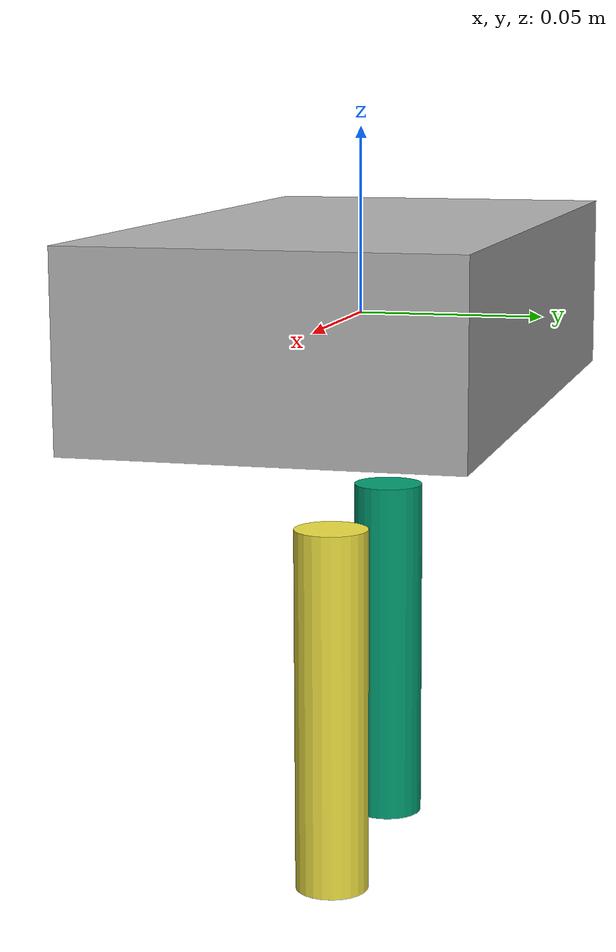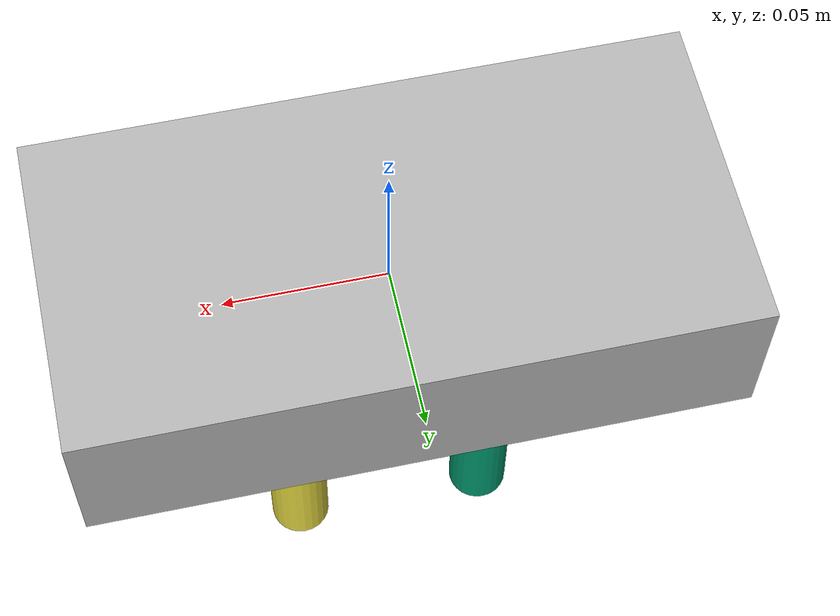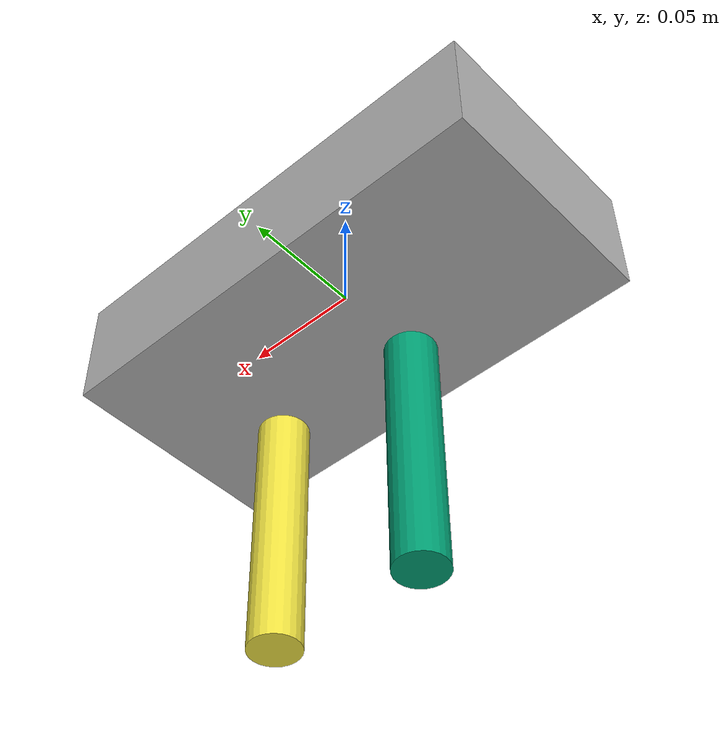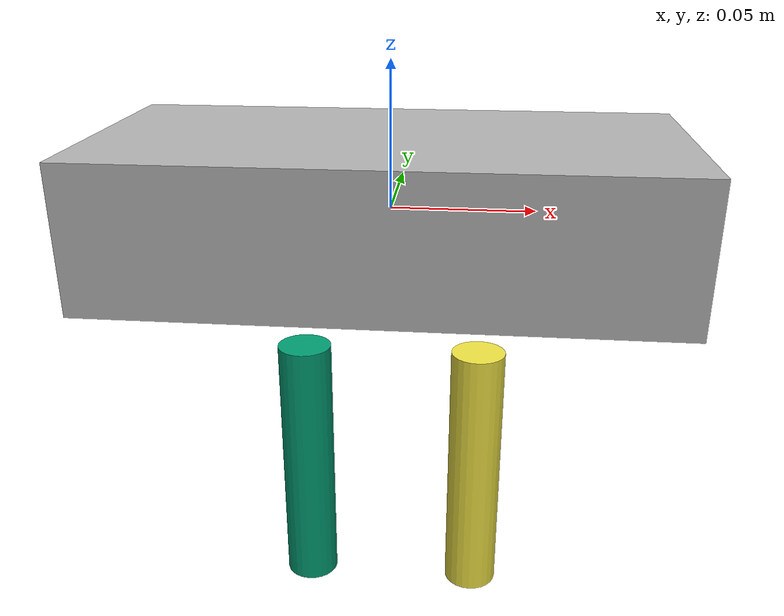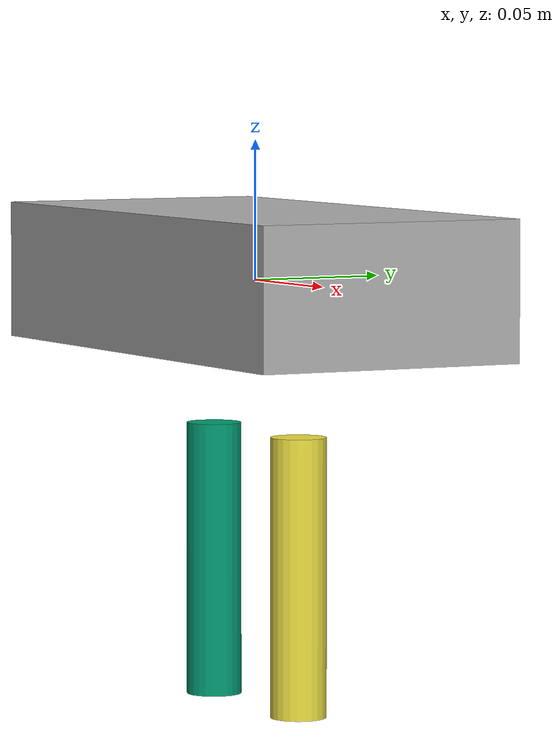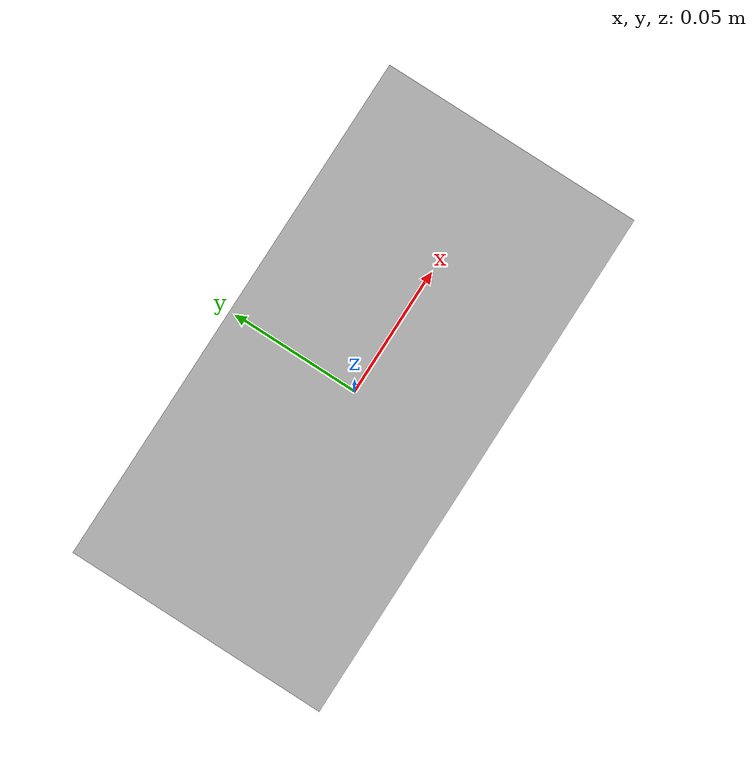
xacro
<?xml version="1.0"?>
<robot xmlns:xacro="http://www.ros.org/wiki/xacro" name="capstan_leg">

  <!-- Константы из прошивки ESP32 -->
  <xacro:property name="E" value="0.065"/>
  <xacro:property name="C" value="0.100"/>
  <xacro:property name="D" value="0.150"/>
  <xacro:property name="H" value="0.054"/>

  <!-- Материалы -->
  <material name="grey">
    <color rgba="0.7 0.7 0.7 1.0"/>
  </material>
  <material name="blue">
    <color rgba="0.0 0.0 0.8 1.0"/>
  </material>

  <!-- БАЗОВОЕ ЗВЕНО (Тело) -->
  <link name="base_link">
    <visual>
      <geometry>
        <box size="0.2 0.1 0.05"/>
      </geometry>
      <material name="grey"/>
    </visual>
    <collision>
      <geometry>
        <box size="0.2 0.1 0.05"/>
      </geometry>
    </collision>
    <inertial>
      <mass value="2.0"/>
      <inertia ixx="0.01" ixy="0.0" ixz="0.0" iyy="0.01" iyz="0.0" izz="0.01"/>
    </inertial>
  </link>

  <!-- МОТОР АБДУКЦИИ (NODE_ID_ABAD = 2) -->
  <joint name="joint_abad" type="revolute">
    <parent link="base_link"/>
    <child link="abad_link"/>
    <!-- Ось крена (Roll), как в прошивке -->
    <axis xyz="1 0 0"/>
    <origin xyz="0 0 0" rpy="0 0 0"/>
    <limit lower="-0.523" upper="0.523" effort="100" velocity="10"/>
  </joint>

  <link name="abad_link">
    <visual>
      <geometry>
        <box size="0.08 0.04 0.04"/>
      </geometry>
      <material name="blue"/>
    </visual>
    <inertial>
      <mass value="0.5"/>
      <inertia ixx="0.001" ixy="0.0" ixz="0.0" iyy="0.001" iyz="0.0" izz="0.001"/>
    </inertial>
  </link>

  <!-- ЛЕВОЕ ПЛЕЧО (NODE_ID_A = 0) -->
  <joint name="joint_a" type="revolute">
    <parent link="abad_link"/>
    <child link="link_a"/>
    <axis xyz="0 1 0"/>
    <origin xyz="${-E/2} 0 ${-H}" rpy="0 0 0"/>
    <limit lower="-3.14" upper="3.14" effort="100" velocity="10"/>
  </joint>

  <link name="link_a">
    <visual>
      <origin xyz="0 0 ${-C/2}" rpy="0 0 0"/>
      <geometry>
        <cylinder radius="0.01" length="${C}"/>
      </geometry>
    </visual>
    <inertial>
      <mass value="0.2"/>
      <inertia ixx="0.0001" ixy="0.0" ixz="0.0" iyy="0.0001" iyz="0.0" izz="0.0001"/>
    </inertial>
  </link>

  <!-- ПРАВОЕ ПЛЕЧО (NODE_ID_B = 1) -->
  <joint name="joint_b" type="revolute">
    <parent link="abad_link"/>
    <child link="link_b"/>
    <axis xyz="0 1 0"/>
    <origin xyz="${E/2} 0 ${-H}" rpy="0 0 0"/>
    <limit lower="-3.14" upper="3.14" effort="100" velocity="10"/>
  </joint>

  <link name="link_b">
    <visual>
      <origin xyz="0 0 ${-C/2}" rpy="0 0 0"/>
      <geometry>
        <cylinder radius="0.01" length="${C}"/>
      </geometry>
    </visual>
    <inertial>
      <mass value="0.2"/>
      <inertia ixx="0.0001" ixy="0.0" ixz="0.0" iyy="0.0001" iyz="0.0" izz="0.0001"/>
    </inertial>
  </link>

  <!-- Датчик IMU в Gazebo Harmonic -->
  <gazebo reference="base_link">
    <sensor name="bno086_imu" type="imu">
      <always_on>true</always_on>
      <update_rate>100</update_rate>
      <visualize>true</visualize>
      <topic>imu/data</topic>
    </sensor>
  </gazebo>

  <!-- Подключение ros2_control для Gazebo Harmonic -->
  <ros2_control name="ODriveSystem" type="system">
    <hardware>
      <plugin>gz_ros2_control/GazeboSimSystem</plugin>
    </hardware>

    <joint name="joint_abad">
      <command_interface name="position"/>
      <state_interface name="position"/>
    </joint>

    <joint name="joint_a">
      <command_interface name="position"/>
      <state_interface name="position"/>
    </joint>

    <joint name="joint_b">
      <command_interface name="position"/>
      <state_interface name="position"/>
    </joint>
  </ros2_control>

  <gazebo>
    <plugin filename="gz_ros2_control-system" name="gz_ros2_control::GazeboSimROS2ControlPlugin">
      <parameters>$(find capstan_leg_sim)/config/controllers.yaml</parameters>
    </plugin>
  </gazebo>

</robot>
